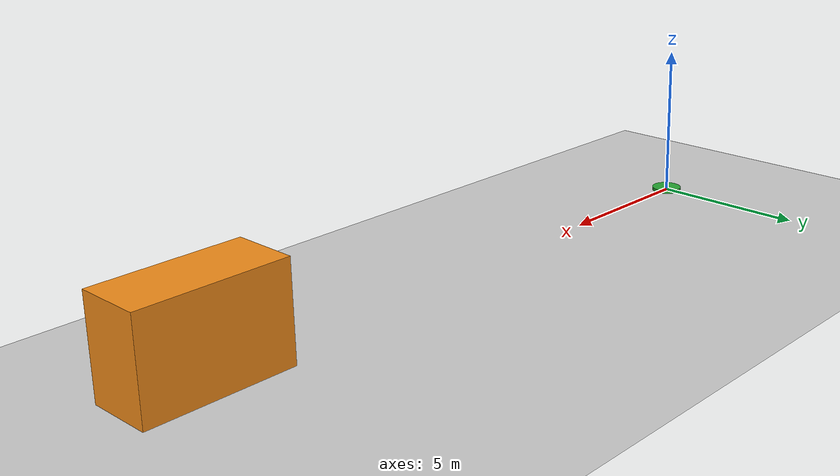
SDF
<?xml version="1.0"?>
<!-- test_vehicle.world: 1辆直线高速接近车辆(3m/s)，验证 EMERGENCY_STOP ≤1.5s -->
<sdf version="1.6">
  <world name="test_vehicle">

    <physics type="ode">
      <max_step_size>0.001</max_step_size>
      <real_time_factor>1</real_time_factor>
      <real_time_update_rate>1000</real_time_update_rate>
    </physics>

    <include><uri>model://sun</uri></include>
    <include><uri>model://ground_plane</uri></include>

    <!--
      车辆高度从 1.5m 提升至 3.0m（中心 z=1.5m），确保激光雷达扫描面（z≈2.95m）穿过车辆。
      obstacle_spawner._teleport_vehicle 中 z 值同步改为 1.5。
    -->
    <model name="vehicle">
      <pose>20.0 0.0 1.5 0 0 3.14159</pose>
      <link name="body">
        <inertial>
          <mass>1500.0</mass>
          <inertia>
            <ixx>500</ixx><ixy>0</ixy><ixz>0</ixz>
            <iyy>2000</iyy><iyz>0</iyz>
            <izz>2000</izz>
          </inertia>
        </inertial>
        <collision name="c">
          <geometry><box><size>4.5 2.0 3.0</size></box></geometry>
        </collision>
        <visual name="v">
          <geometry><box><size>4.5 2.0 3.0</size></box></geometry>
          <material>
            <script>
              <uri>file://media/materials/scripts/gazebo.material</uri>
              <name>Gazebo/Orange</name>
            </script>
          </material>
        </visual>
      </link>
      <!-- 速度由 obstacle_spawner 通过 /vehicle_cmd_vel 控制 -->
    </model>

    <!-- 起点/终点标记 -->
    <model name="excavator_start_marker">
      <static>true</static>
      <pose>0 0 0.05 0 0 0</pose>
      <link name="link">
        <visual name="v">
          <geometry><cylinder><radius>0.5</radius><length>0.1</length></cylinder></geometry>
          <material><script><uri>file://media/materials/scripts/gazebo.material</uri><name>Gazebo/Green</name></script></material>
        </visual>
      </link>
    </model>

    <model name="vehicle_start_marker">
      <static>true</static>
      <pose>20 0 0.05 0 0 0</pose>
      <link name="link">
        <visual name="v">
          <geometry><cylinder><radius>0.5</radius><length>0.1</length></cylinder></geometry>
          <material><script><uri>file://media/materials/scripts/gazebo.material</uri><name>Gazebo/Red</name></script></material>
        </visual>
      </link>
    </model>

  </world>
</sdf>
